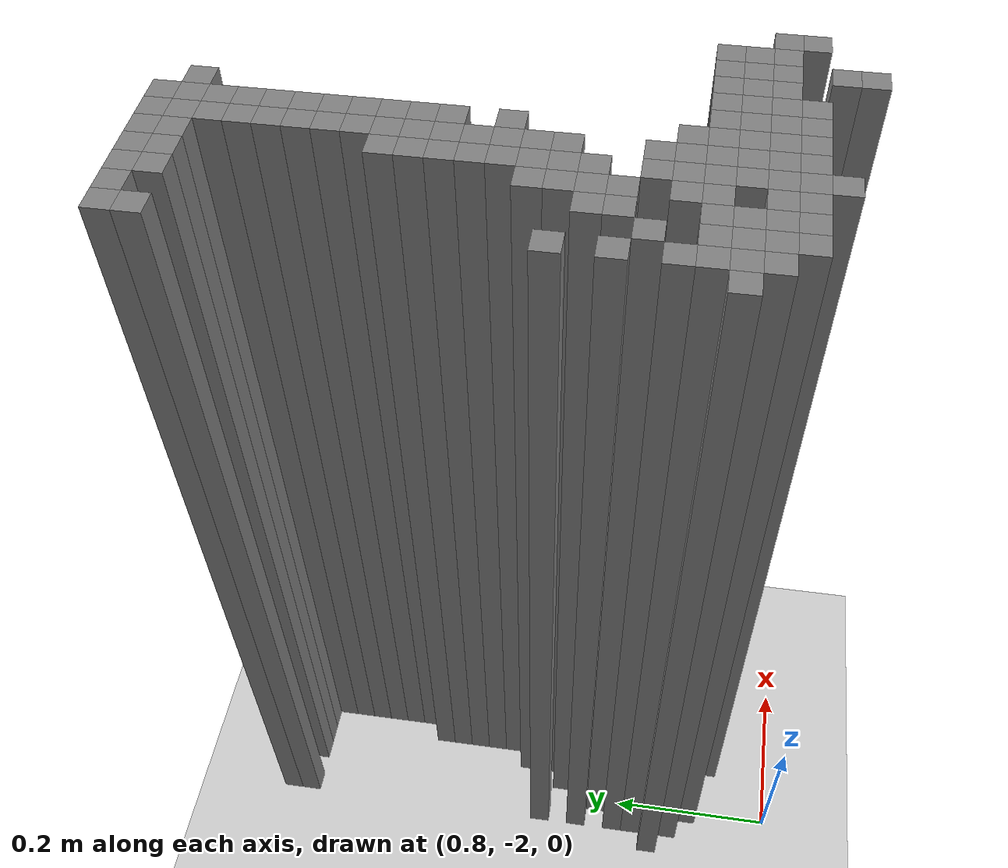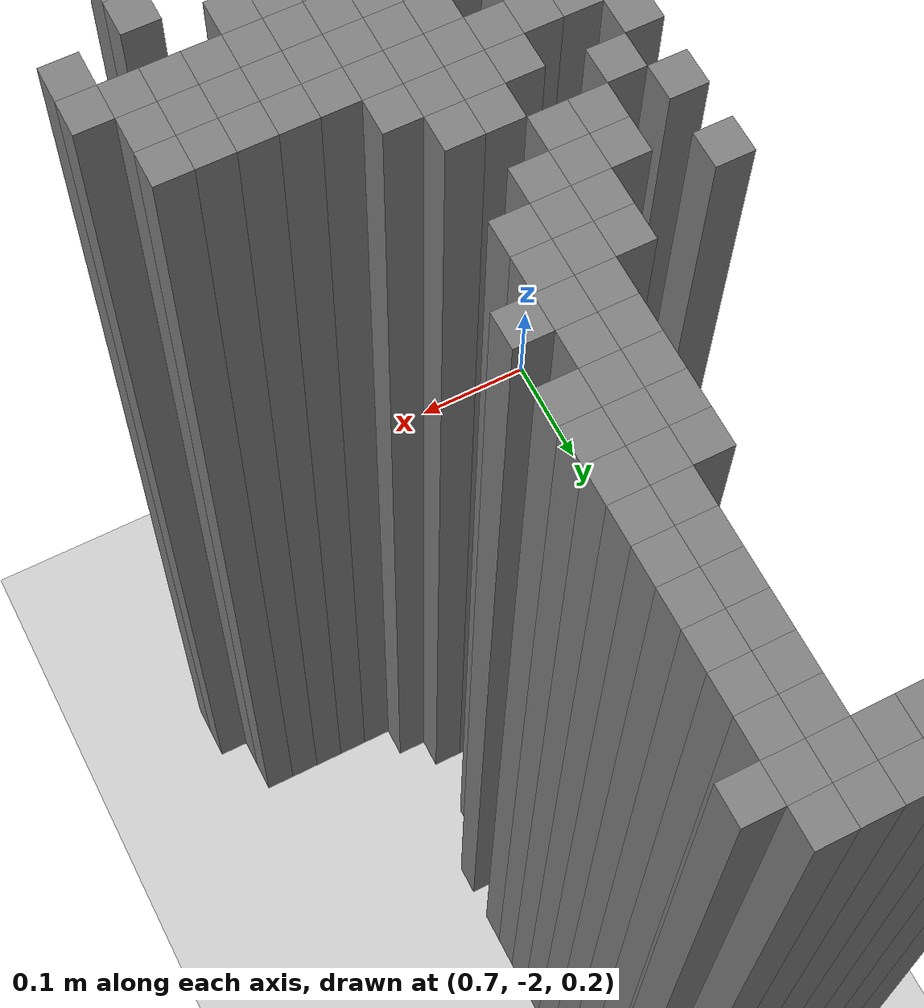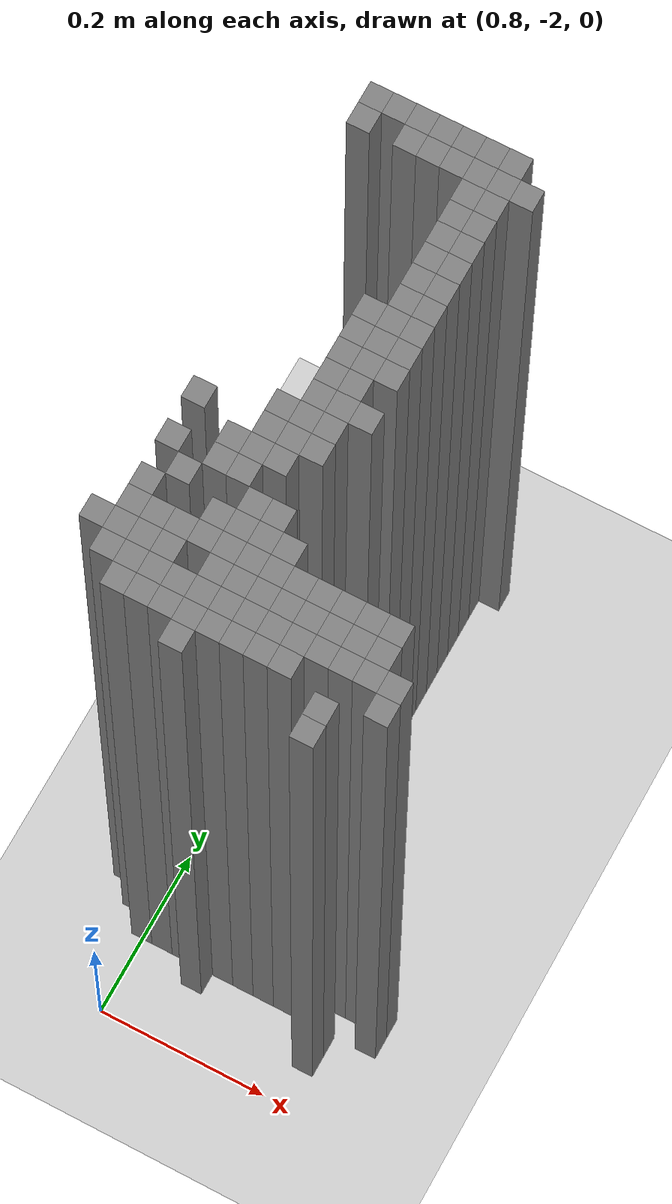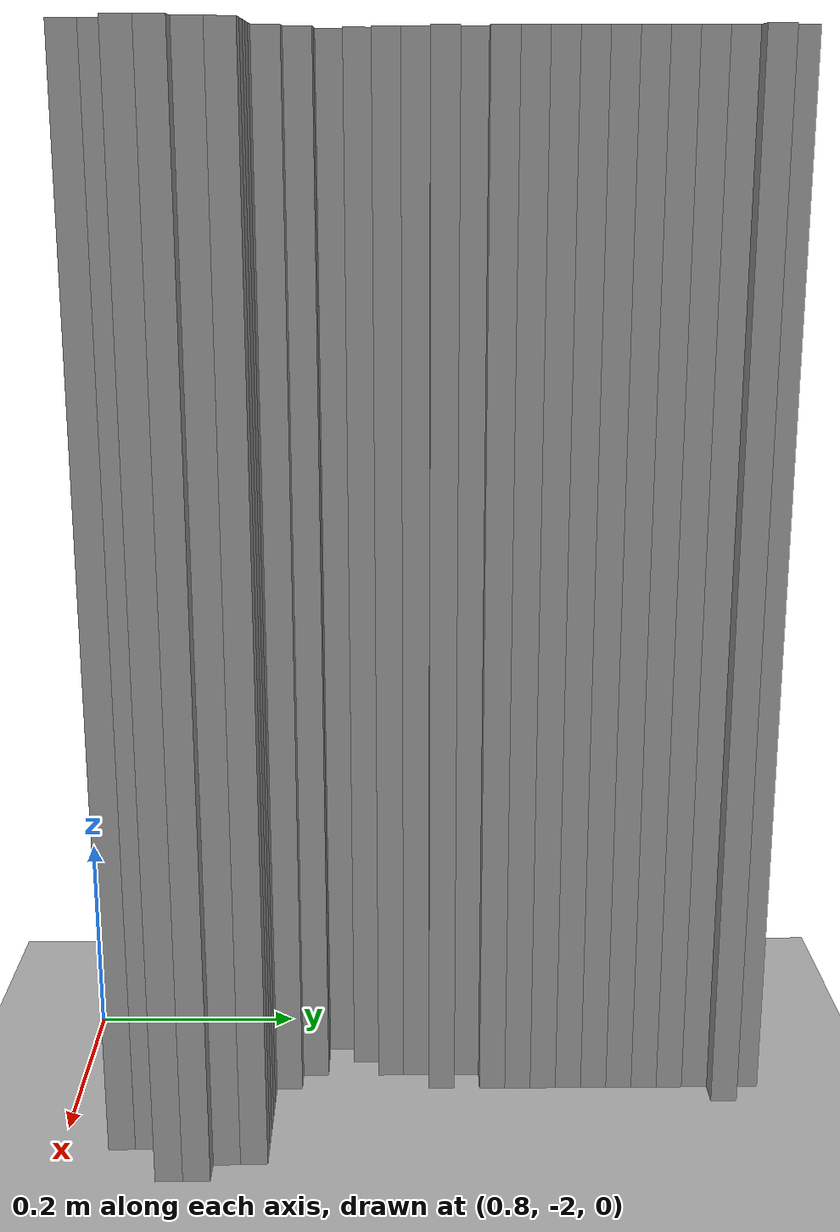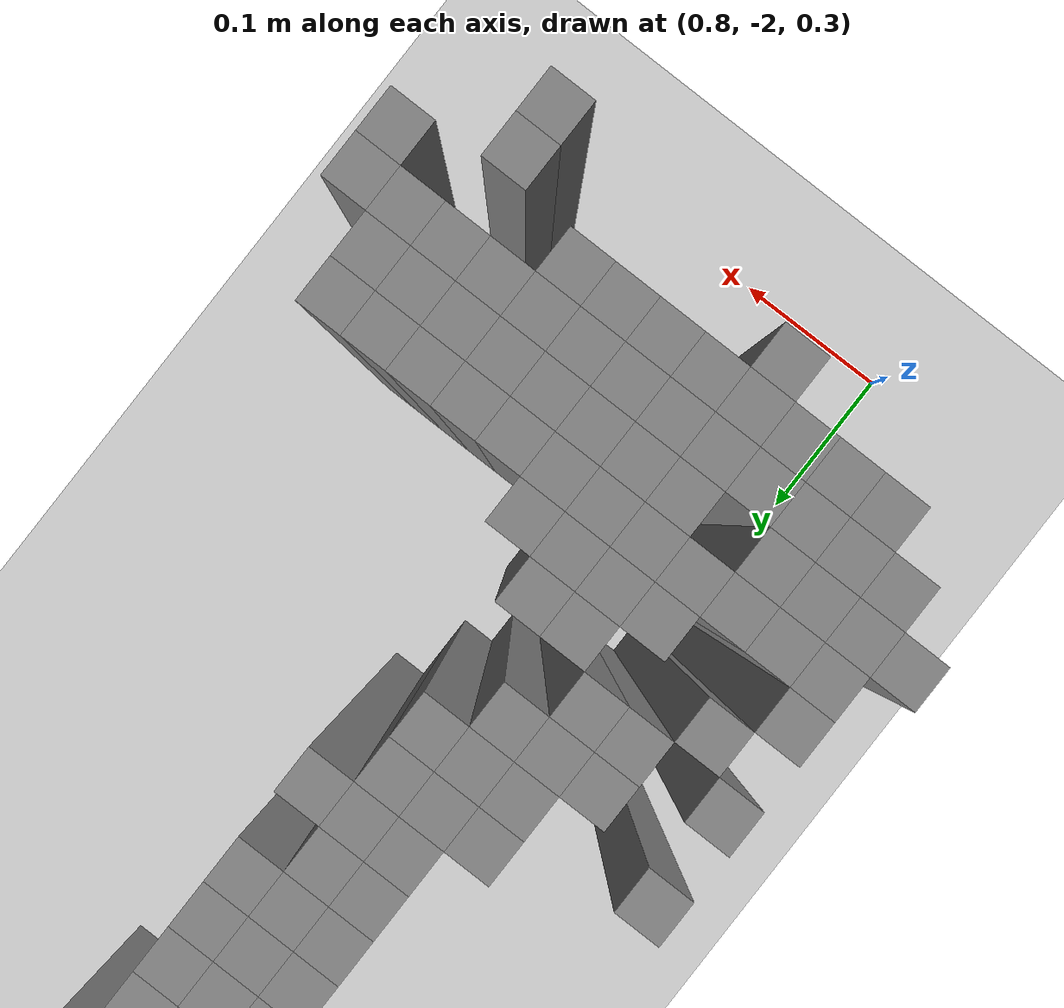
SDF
<sdf version="1.6">
 <world name="map_world">
  <include><uri>model://ground_plane</uri></include>
  <include><uri>model://sun</uri></include>
  <model name="obs_124_103">
   <static>true</static>
   <link name="link">
    <collision name="collision"><geometry><box><size>0.025 0.025 1.0</size></box></geometry></collision>
    <visual name="visual">
     <geometry><box><size>0.025 0.025 1.0</size></box></geometry>
     <material><ambient>0.5 0.5 0.5 1</ambient></material>
    </visual>
   </link>
   <pose>0.773765 -1.344071 0.5 0 0 0</pose>
  </model>
  <model name="obs_125_103">
   <static>true</static>
   <link name="link">
    <collision name="collision"><geometry><box><size>0.025 0.025 1.0</size></box></geometry></collision>
    <visual name="visual">
     <geometry><box><size>0.025 0.025 1.0</size></box></geometry>
     <material><ambient>0.5 0.5 0.5 1</ambient></material>
    </visual>
   </link>
   <pose>0.798765 -1.344071 0.5 0 0 0</pose>
  </model>
  <model name="obs_126_103">
   <static>true</static>
   <link name="link">
    <collision name="collision"><geometry><box><size>0.025 0.025 1.0</size></box></geometry></collision>
    <visual name="visual">
     <geometry><box><size>0.025 0.025 1.0</size></box></geometry>
     <material><ambient>0.5 0.5 0.5 1</ambient></material>
    </visual>
   </link>
   <pose>0.8237650000000003 -1.344071 0.5 0 0 0</pose>
  </model>
  <model name="obs_127_103">
   <static>true</static>
   <link name="link">
    <collision name="collision"><geometry><box><size>0.025 0.025 1.0</size></box></geometry></collision>
    <visual name="visual">
     <geometry><box><size>0.025 0.025 1.0</size></box></geometry>
     <material><ambient>0.5 0.5 0.5 1</ambient></material>
    </visual>
   </link>
   <pose>0.8487650000000002 -1.344071 0.5 0 0 0</pose>
  </model>
  <model name="obs_128_103">
   <static>true</static>
   <link name="link">
    <collision name="collision"><geometry><box><size>0.025 0.025 1.0</size></box></geometry></collision>
    <visual name="visual">
     <geometry><box><size>0.025 0.025 1.0</size></box></geometry>
     <material><ambient>0.5 0.5 0.5 1</ambient></material>
    </visual>
   </link>
   <pose>0.8737650000000001 -1.344071 0.5 0 0 0</pose>
  </model>
  <model name="obs_129_103">
   <static>true</static>
   <link name="link">
    <collision name="collision"><geometry><box><size>0.025 0.025 1.0</size></box></geometry></collision>
    <visual name="visual">
     <geometry><box><size>0.025 0.025 1.0</size></box></geometry>
     <material><ambient>0.5 0.5 0.5 1</ambient></material>
    </visual>
   </link>
   <pose>0.898765 -1.344071 0.5 0 0 0</pose>
  </model>
  <model name="obs_130_103">
   <static>true</static>
   <link name="link">
    <collision name="collision"><geometry><box><size>0.025 0.025 1.0</size></box></geometry></collision>
    <visual name="visual">
     <geometry><box><size>0.025 0.025 1.0</size></box></geometry>
     <material><ambient>0.5 0.5 0.5 1</ambient></material>
    </visual>
   </link>
   <pose>0.923765 -1.344071 0.5 0 0 0</pose>
  </model>
  <model name="obs_124_104">
   <static>true</static>
   <link name="link">
    <collision name="collision"><geometry><box><size>0.025 0.025 1.0</size></box></geometry></collision>
    <visual name="visual">
     <geometry><box><size>0.025 0.025 1.0</size></box></geometry>
     <material><ambient>0.5 0.5 0.5 1</ambient></material>
    </visual>
   </link>
   <pose>0.773765 -1.369071 0.5 0 0 0</pose>
  </model>
  <model name="obs_126_104">
   <static>true</static>
   <link name="link">
    <collision name="collision"><geometry><box><size>0.025 0.025 1.0</size></box></geometry></collision>
    <visual name="visual">
     <geometry><box><size>0.025 0.025 1.0</size></box></geometry>
     <material><ambient>0.5 0.5 0.5 1</ambient></material>
    </visual>
   </link>
   <pose>0.8237650000000003 -1.369071 0.5 0 0 0</pose>
  </model>
  <model name="obs_127_104">
   <static>true</static>
   <link name="link">
    <collision name="collision"><geometry><box><size>0.025 0.025 1.0</size></box></geometry></collision>
    <visual name="visual">
     <geometry><box><size>0.025 0.025 1.0</size></box></geometry>
     <material><ambient>0.5 0.5 0.5 1</ambient></material>
    </visual>
   </link>
   <pose>0.8487650000000002 -1.369071 0.5 0 0 0</pose>
  </model>
  <model name="obs_128_104">
   <static>true</static>
   <link name="link">
    <collision name="collision"><geometry><box><size>0.025 0.025 1.0</size></box></geometry></collision>
    <visual name="visual">
     <geometry><box><size>0.025 0.025 1.0</size></box></geometry>
     <material><ambient>0.5 0.5 0.5 1</ambient></material>
    </visual>
   </link>
   <pose>0.8737650000000001 -1.369071 0.5 0 0 0</pose>
  </model>
  <model name="obs_129_104">
   <static>true</static>
   <link name="link">
    <collision name="collision"><geometry><box><size>0.025 0.025 1.0</size></box></geometry></collision>
    <visual name="visual">
     <geometry><box><size>0.025 0.025 1.0</size></box></geometry>
     <material><ambient>0.5 0.5 0.5 1</ambient></material>
    </visual>
   </link>
   <pose>0.898765 -1.369071 0.5 0 0 0</pose>
  </model>
  <model name="obs_130_104">
   <static>true</static>
   <link name="link">
    <collision name="collision"><geometry><box><size>0.025 0.025 1.0</size></box></geometry></collision>
    <visual name="visual">
     <geometry><box><size>0.025 0.025 1.0</size></box></geometry>
     <material><ambient>0.5 0.5 0.5 1</ambient></material>
    </visual>
   </link>
   <pose>0.923765 -1.369071 0.5 0 0 0</pose>
  </model>
  <model name="obs_131_104">
   <static>true</static>
   <link name="link">
    <collision name="collision"><geometry><box><size>0.025 0.025 1.0</size></box></geometry></collision>
    <visual name="visual">
     <geometry><box><size>0.025 0.025 1.0</size></box></geometry>
     <material><ambient>0.5 0.5 0.5 1</ambient></material>
    </visual>
   </link>
   <pose>0.9487650000000003 -1.369071 0.5 0 0 0</pose>
  </model>
  <model name="obs_129_105">
   <static>true</static>
   <link name="link">
    <collision name="collision"><geometry><box><size>0.025 0.025 1.0</size></box></geometry></collision>
    <visual name="visual">
     <geometry><box><size>0.025 0.025 1.0</size></box></geometry>
     <material><ambient>0.5 0.5 0.5 1</ambient></material>
    </visual>
   </link>
   <pose>0.898765 -1.3940709999999998 0.5 0 0 0</pose>
  </model>
  <model name="obs_130_105">
   <static>true</static>
   <link name="link">
    <collision name="collision"><geometry><box><size>0.025 0.025 1.0</size></box></geometry></collision>
    <visual name="visual">
     <geometry><box><size>0.025 0.025 1.0</size></box></geometry>
     <material><ambient>0.5 0.5 0.5 1</ambient></material>
    </visual>
   </link>
   <pose>0.923765 -1.3940709999999998 0.5 0 0 0</pose>
  </model>
  <model name="obs_129_106">
   <static>true</static>
   <link name="link">
    <collision name="collision"><geometry><box><size>0.025 0.025 1.0</size></box></geometry></collision>
    <visual name="visual">
     <geometry><box><size>0.025 0.025 1.0</size></box></geometry>
     <material><ambient>0.5 0.5 0.5 1</ambient></material>
    </visual>
   </link>
   <pose>0.898765 -1.4190709999999997 0.5 0 0 0</pose>
  </model>
  <model name="obs_130_106">
   <static>true</static>
   <link name="link">
    <collision name="collision"><geometry><box><size>0.025 0.025 1.0</size></box></geometry></collision>
    <visual name="visual">
     <geometry><box><size>0.025 0.025 1.0</size></box></geometry>
     <material><ambient>0.5 0.5 0.5 1</ambient></material>
    </visual>
   </link>
   <pose>0.923765 -1.4190709999999997 0.5 0 0 0</pose>
  </model>
  <model name="obs_129_107">
   <static>true</static>
   <link name="link">
    <collision name="collision"><geometry><box><size>0.025 0.025 1.0</size></box></geometry></collision>
    <visual name="visual">
     <geometry><box><size>0.025 0.025 1.0</size></box></geometry>
     <material><ambient>0.5 0.5 0.5 1</ambient></material>
    </visual>
   </link>
   <pose>0.898765 -1.4440709999999999 0.5 0 0 0</pose>
  </model>
  <model name="obs_130_107">
   <static>true</static>
   <link name="link">
    <collision name="collision"><geometry><box><size>0.025 0.025 1.0</size></box></geometry></collision>
    <visual name="visual">
     <geometry><box><size>0.025 0.025 1.0</size></box></geometry>
     <material><ambient>0.5 0.5 0.5 1</ambient></material>
    </visual>
   </link>
   <pose>0.923765 -1.4440709999999999 0.5 0 0 0</pose>
  </model>
  <model name="obs_129_108">
   <static>true</static>
   <link name="link">
    <collision name="collision"><geometry><box><size>0.025 0.025 1.0</size></box></geometry></collision>
    <visual name="visual">
     <geometry><box><size>0.025 0.025 1.0</size></box></geometry>
     <material><ambient>0.5 0.5 0.5 1</ambient></material>
    </visual>
   </link>
   <pose>0.898765 -1.469071 0.5 0 0 0</pose>
  </model>
  <model name="obs_130_108">
   <static>true</static>
   <link name="link">
    <collision name="collision"><geometry><box><size>0.025 0.025 1.0</size></box></geometry></collision>
    <visual name="visual">
     <geometry><box><size>0.025 0.025 1.0</size></box></geometry>
     <material><ambient>0.5 0.5 0.5 1</ambient></material>
    </visual>
   </link>
   <pose>0.923765 -1.469071 0.5 0 0 0</pose>
  </model>
  <model name="obs_129_109">
   <static>true</static>
   <link name="link">
    <collision name="collision"><geometry><box><size>0.025 0.025 1.0</size></box></geometry></collision>
    <visual name="visual">
     <geometry><box><size>0.025 0.025 1.0</size></box></geometry>
     <material><ambient>0.5 0.5 0.5 1</ambient></material>
    </visual>
   </link>
   <pose>0.898765 -1.494071 0.5 0 0 0</pose>
  </model>
  <model name="obs_130_109">
   <static>true</static>
   <link name="link">
    <collision name="collision"><geometry><box><size>0.025 0.025 1.0</size></box></geometry></collision>
    <visual name="visual">
     <geometry><box><size>0.025 0.025 1.0</size></box></geometry>
     <material><ambient>0.5 0.5 0.5 1</ambient></material>
    </visual>
   </link>
   <pose>0.923765 -1.494071 0.5 0 0 0</pose>
  </model>
  <model name="obs_129_110">
   <static>true</static>
   <link name="link">
    <collision name="collision"><geometry><box><size>0.025 0.025 1.0</size></box></geometry></collision>
    <visual name="visual">
     <geometry><box><size>0.025 0.025 1.0</size></box></geometry>
     <material><ambient>0.5 0.5 0.5 1</ambient></material>
    </visual>
   </link>
   <pose>0.898765 -1.5190709999999998 0.5 0 0 0</pose>
  </model>
  <model name="obs_130_110">
   <static>true</static>
   <link name="link">
    <collision name="collision"><geometry><box><size>0.025 0.025 1.0</size></box></geometry></collision>
    <visual name="visual">
     <geometry><box><size>0.025 0.025 1.0</size></box></geometry>
     <material><ambient>0.5 0.5 0.5 1</ambient></material>
    </visual>
   </link>
   <pose>0.923765 -1.5190709999999998 0.5 0 0 0</pose>
  </model>
  <model name="obs_128_111">
   <static>true</static>
   <link name="link">
    <collision name="collision"><geometry><box><size>0.025 0.025 1.0</size></box></geometry></collision>
    <visual name="visual">
     <geometry><box><size>0.025 0.025 1.0</size></box></geometry>
     <material><ambient>0.5 0.5 0.5 1</ambient></material>
    </visual>
   </link>
   <pose>0.8737650000000001 -1.544071 0.5 0 0 0</pose>
  </model>
  <model name="obs_129_111">
   <static>true</static>
   <link name="link">
    <collision name="collision"><geometry><box><size>0.025 0.025 1.0</size></box></geometry></collision>
    <visual name="visual">
     <geometry><box><size>0.025 0.025 1.0</size></box></geometry>
     <material><ambient>0.5 0.5 0.5 1</ambient></material>
    </visual>
   </link>
   <pose>0.898765 -1.544071 0.5 0 0 0</pose>
  </model>
  <model name="obs_130_111">
   <static>true</static>
   <link name="link">
    <collision name="collision"><geometry><box><size>0.025 0.025 1.0</size></box></geometry></collision>
    <visual name="visual">
     <geometry><box><size>0.025 0.025 1.0</size></box></geometry>
     <material><ambient>0.5 0.5 0.5 1</ambient></material>
    </visual>
   </link>
   <pose>0.923765 -1.544071 0.5 0 0 0</pose>
  </model>
  <model name="obs_128_112">
   <static>true</static>
   <link name="link">
    <collision name="collision"><geometry><box><size>0.025 0.025 1.0</size></box></geometry></collision>
    <visual name="visual">
     <geometry><box><size>0.025 0.025 1.0</size></box></geometry>
     <material><ambient>0.5 0.5 0.5 1</ambient></material>
    </visual>
   </link>
   <pose>0.8737650000000001 -1.5690709999999999 0.5 0 0 0</pose>
  </model>
  <model name="obs_129_112">
   <static>true</static>
   <link name="link">
    <collision name="collision"><geometry><box><size>0.025 0.025 1.0</size></box></geometry></collision>
    <visual name="visual">
     <geometry><box><size>0.025 0.025 1.0</size></box></geometry>
     <material><ambient>0.5 0.5 0.5 1</ambient></material>
    </visual>
   </link>
   <pose>0.898765 -1.5690709999999999 0.5 0 0 0</pose>
  </model>
  <model name="obs_130_112">
   <static>true</static>
   <link name="link">
    <collision name="collision"><geometry><box><size>0.025 0.025 1.0</size></box></geometry></collision>
    <visual name="visual">
     <geometry><box><size>0.025 0.025 1.0</size></box></geometry>
     <material><ambient>0.5 0.5 0.5 1</ambient></material>
    </visual>
   </link>
   <pose>0.923765 -1.5690709999999999 0.5 0 0 0</pose>
  </model>
  <model name="obs_128_113">
   <static>true</static>
   <link name="link">
    <collision name="collision"><geometry><box><size>0.025 0.025 1.0</size></box></geometry></collision>
    <visual name="visual">
     <geometry><box><size>0.025 0.025 1.0</size></box></geometry>
     <material><ambient>0.5 0.5 0.5 1</ambient></material>
    </visual>
   </link>
   <pose>0.8737650000000001 -1.594071 0.5 0 0 0</pose>
  </model>
  <model name="obs_129_113">
   <static>true</static>
   <link name="link">
    <collision name="collision"><geometry><box><size>0.025 0.025 1.0</size></box></geometry></collision>
    <visual name="visual">
     <geometry><box><size>0.025 0.025 1.0</size></box></geometry>
     <material><ambient>0.5 0.5 0.5 1</ambient></material>
    </visual>
   </link>
   <pose>0.898765 -1.594071 0.5 0 0 0</pose>
  </model>
  <model name="obs_130_113">
   <static>true</static>
   <link name="link">
    <collision name="collision"><geometry><box><size>0.025 0.025 1.0</size></box></geometry></collision>
    <visual name="visual">
     <geometry><box><size>0.025 0.025 1.0</size></box></geometry>
     <material><ambient>0.5 0.5 0.5 1</ambient></material>
    </visual>
   </link>
   <pose>0.923765 -1.594071 0.5 0 0 0</pose>
  </model>
  <model name="obs_128_114">
   <static>true</static>
   <link name="link">
    <collision name="collision"><geometry><box><size>0.025 0.025 1.0</size></box></geometry></collision>
    <visual name="visual">
     <geometry><box><size>0.025 0.025 1.0</size></box></geometry>
     <material><ambient>0.5 0.5 0.5 1</ambient></material>
    </visual>
   </link>
   <pose>0.8737650000000001 -1.619071 0.5 0 0 0</pose>
  </model>
  <model name="obs_129_114">
   <static>true</static>
   <link name="link">
    <collision name="collision"><geometry><box><size>0.025 0.025 1.0</size></box></geometry></collision>
    <visual name="visual">
     <geometry><box><size>0.025 0.025 1.0</size></box></geometry>
     <material><ambient>0.5 0.5 0.5 1</ambient></material>
    </visual>
   </link>
   <pose>0.898765 -1.619071 0.5 0 0 0</pose>
  </model>
  <model name="obs_128_115">
   <static>true</static>
   <link name="link">
    <collision name="collision"><geometry><box><size>0.025 0.025 1.0</size></box></geometry></collision>
    <visual name="visual">
     <geometry><box><size>0.025 0.025 1.0</size></box></geometry>
     <material><ambient>0.5 0.5 0.5 1</ambient></material>
    </visual>
   </link>
   <pose>0.8737650000000001 -1.6440709999999998 0.5 0 0 0</pose>
  </model>
  <model name="obs_129_115">
   <static>true</static>
   <link name="link">
    <collision name="collision"><geometry><box><size>0.025 0.025 1.0</size></box></geometry></collision>
    <visual name="visual">
     <geometry><box><size>0.025 0.025 1.0</size></box></geometry>
     <material><ambient>0.5 0.5 0.5 1</ambient></material>
    </visual>
   </link>
   <pose>0.898765 -1.6440709999999998 0.5 0 0 0</pose>
  </model>
  <model name="obs_130_115">
   <static>true</static>
   <link name="link">
    <collision name="collision"><geometry><box><size>0.025 0.025 1.0</size></box></geometry></collision>
    <visual name="visual">
     <geometry><box><size>0.025 0.025 1.0</size></box></geometry>
     <material><ambient>0.5 0.5 0.5 1</ambient></material>
    </visual>
   </link>
   <pose>0.923765 -1.6440709999999998 0.5 0 0 0</pose>
  </model>
  <model name="obs_127_116">
   <static>true</static>
   <link name="link">
    <collision name="collision"><geometry><box><size>0.025 0.025 1.0</size></box></geometry></collision>
    <visual name="visual">
     <geometry><box><size>0.025 0.025 1.0</size></box></geometry>
     <material><ambient>0.5 0.5 0.5 1</ambient></material>
    </visual>
   </link>
   <pose>0.8487650000000002 -1.669071 0.5 0 0 0</pose>
  </model>
  <model name="obs_128_116">
   <static>true</static>
   <link name="link">
    <collision name="collision"><geometry><box><size>0.025 0.025 1.0</size></box></geometry></collision>
    <visual name="visual">
     <geometry><box><size>0.025 0.025 1.0</size></box></geometry>
     <material><ambient>0.5 0.5 0.5 1</ambient></material>
    </visual>
   </link>
   <pose>0.8737650000000001 -1.669071 0.5 0 0 0</pose>
  </model>
  <model name="obs_129_116">
   <static>true</static>
   <link name="link">
    <collision name="collision"><geometry><box><size>0.025 0.025 1.0</size></box></geometry></collision>
    <visual name="visual">
     <geometry><box><size>0.025 0.025 1.0</size></box></geometry>
     <material><ambient>0.5 0.5 0.5 1</ambient></material>
    </visual>
   </link>
   <pose>0.898765 -1.669071 0.5 0 0 0</pose>
  </model>
  <model name="obs_124_117">
   <static>true</static>
   <link name="link">
    <collision name="collision"><geometry><box><size>0.025 0.025 1.0</size></box></geometry></collision>
    <visual name="visual">
     <geometry><box><size>0.025 0.025 1.0</size></box></geometry>
     <material><ambient>0.5 0.5 0.5 1</ambient></material>
    </visual>
   </link>
   <pose>0.773765 -1.6940709999999999 0.5 0 0 0</pose>
  </model>
  <model name="obs_127_117">
   <static>true</static>
   <link name="link">
    <collision name="collision"><geometry><box><size>0.025 0.025 1.0</size></box></geometry></collision>
    <visual name="visual">
     <geometry><box><size>0.025 0.025 1.0</size></box></geometry>
     <material><ambient>0.5 0.5 0.5 1</ambient></material>
    </visual>
   </link>
   <pose>0.8487650000000002 -1.6940709999999999 0.5 0 0 0</pose>
  </model>
  <model name="obs_128_117">
   <static>true</static>
   <link name="link">
    <collision name="collision"><geometry><box><size>0.025 0.025 1.0</size></box></geometry></collision>
    <visual name="visual">
     <geometry><box><size>0.025 0.025 1.0</size></box></geometry>
     <material><ambient>0.5 0.5 0.5 1</ambient></material>
    </visual>
   </link>
   <pose>0.8737650000000001 -1.6940709999999999 0.5 0 0 0</pose>
  </model>
  <model name="obs_129_117">
   <static>true</static>
   <link name="link">
    <collision name="collision"><geometry><box><size>0.025 0.025 1.0</size></box></geometry></collision>
    <visual name="visual">
     <geometry><box><size>0.025 0.025 1.0</size></box></geometry>
     <material><ambient>0.5 0.5 0.5 1</ambient></material>
    </visual>
   </link>
   <pose>0.898765 -1.6940709999999999 0.5 0 0 0</pose>
  </model>
  <model name="obs_126_118">
   <static>true</static>
   <link name="link">
    <collision name="collision"><geometry><box><size>0.025 0.025 1.0</size></box></geometry></collision>
    <visual name="visual">
     <geometry><box><size>0.025 0.025 1.0</size></box></geometry>
     <material><ambient>0.5 0.5 0.5 1</ambient></material>
    </visual>
   </link>
   <pose>0.8237650000000003 -1.719071 0.5 0 0 0</pose>
  </model>
  <model name="obs_127_118">
   <static>true</static>
   <link name="link">
    <collision name="collision"><geometry><box><size>0.025 0.025 1.0</size></box></geometry></collision>
    <visual name="visual">
     <geometry><box><size>0.025 0.025 1.0</size></box></geometry>
     <material><ambient>0.5 0.5 0.5 1</ambient></material>
    </visual>
   </link>
   <pose>0.8487650000000002 -1.719071 0.5 0 0 0</pose>
  </model>
  <model name="obs_128_118">
   <static>true</static>
   <link name="link">
    <collision name="collision"><geometry><box><size>0.025 0.025 1.0</size></box></geometry></collision>
    <visual name="visual">
     <geometry><box><size>0.025 0.025 1.0</size></box></geometry>
     <material><ambient>0.5 0.5 0.5 1</ambient></material>
    </visual>
   </link>
   <pose>0.8737650000000001 -1.719071 0.5 0 0 0</pose>
  </model>
  <model name="obs_124_119">
   <static>true</static>
   <link name="link">
    <collision name="collision"><geometry><box><size>0.025 0.025 1.0</size></box></geometry></collision>
    <visual name="visual">
     <geometry><box><size>0.025 0.025 1.0</size></box></geometry>
     <material><ambient>0.5 0.5 0.5 1</ambient></material>
    </visual>
   </link>
   <pose>0.773765 -1.744071 0.5 0 0 0</pose>
  </model>
  <model name="obs_126_119">
   <static>true</static>
   <link name="link">
    <collision name="collision"><geometry><box><size>0.025 0.025 1.0</size></box></geometry></collision>
    <visual name="visual">
     <geometry><box><size>0.025 0.025 1.0</size></box></geometry>
     <material><ambient>0.5 0.5 0.5 1</ambient></material>
    </visual>
   </link>
   <pose>0.8237650000000003 -1.744071 0.5 0 0 0</pose>
  </model>
  <model name="obs_127_119">
   <static>true</static>
   <link name="link">
    <collision name="collision"><geometry><box><size>0.025 0.025 1.0</size></box></geometry></collision>
    <visual name="visual">
     <geometry><box><size>0.025 0.025 1.0</size></box></geometry>
     <material><ambient>0.5 0.5 0.5 1</ambient></material>
    </visual>
   </link>
   <pose>0.8487650000000002 -1.744071 0.5 0 0 0</pose>
  </model>
  <model name="obs_125_120">
   <static>true</static>
   <link name="link">
    <collision name="collision"><geometry><box><size>0.025 0.025 1.0</size></box></geometry></collision>
    <visual name="visual">
     <geometry><box><size>0.025 0.025 1.0</size></box></geometry>
     <material><ambient>0.5 0.5 0.5 1</ambient></material>
    </visual>
   </link>
   <pose>0.798765 -1.7690709999999998 0.5 0 0 0</pose>
  </model>
  <model name="obs_128_120">
   <static>true</static>
   <link name="link">
    <collision name="collision"><geometry><box><size>0.025 0.025 1.0</size></box></geometry></collision>
    <visual name="visual">
     <geometry><box><size>0.025 0.025 1.0</size></box></geometry>
     <material><ambient>0.5 0.5 0.5 1</ambient></material>
    </visual>
   </link>
   <pose>0.8737650000000001 -1.7690709999999998 0.5 0 0 0</pose>
  </model>
  <model name="obs_129_120">
   <static>true</static>
   <link name="link">
    <collision name="collision"><geometry><box><size>0.025 0.025 1.0</size></box></geometry></collision>
    <visual name="visual">
     <geometry><box><size>0.025 0.025 1.0</size></box></geometry>
     <material><ambient>0.5 0.5 0.5 1</ambient></material>
    </visual>
   </link>
   <pose>0.898765 -1.7690709999999998 0.5 0 0 0</pose>
  </model>
  <model name="obs_124_121">
   <static>true</static>
   <link name="link">
    <collision name="collision"><geometry><box><size>0.025 0.025 1.0</size></box></geometry></collision>
    <visual name="visual">
     <geometry><box><size>0.025 0.025 1.0</size></box></geometry>
     <material><ambient>0.5 0.5 0.5 1</ambient></material>
    </visual>
   </link>
   <pose>0.773765 -1.794071 0.5 0 0 0</pose>
  </model>
  <model name="obs_127_121">
   <static>true</static>
   <link name="link">
    <collision name="collision"><geometry><box><size>0.025 0.025 1.0</size></box></geometry></collision>
    <visual name="visual">
     <geometry><box><size>0.025 0.025 1.0</size></box></geometry>
     <material><ambient>0.5 0.5 0.5 1</ambient></material>
    </visual>
   </link>
   <pose>0.8487650000000002 -1.794071 0.5 0 0 0</pose>
  </model>
  <model name="obs_128_121">
   <static>true</static>
   <link name="link">
    <collision name="collision"><geometry><box><size>0.025 0.025 1.0</size></box></geometry></collision>
    <visual name="visual">
     <geometry><box><size>0.025 0.025 1.0</size></box></geometry>
     <material><ambient>0.5 0.5 0.5 1</ambient></material>
    </visual>
   </link>
   <pose>0.8737650000000001 -1.794071 0.5 0 0 0</pose>
  </model>
  <model name="obs_129_121">
   <static>true</static>
   <link name="link">
    <collision name="collision"><geometry><box><size>0.025 0.025 1.0</size></box></geometry></collision>
    <visual name="visual">
     <geometry><box><size>0.025 0.025 1.0</size></box></geometry>
     <material><ambient>0.5 0.5 0.5 1</ambient></material>
    </visual>
   </link>
   <pose>0.898765 -1.794071 0.5 0 0 0</pose>
  </model>
  <model name="obs_130_121">
   <static>true</static>
   <link name="link">
    <collision name="collision"><geometry><box><size>0.025 0.025 1.0</size></box></geometry></collision>
    <visual name="visual">
     <geometry><box><size>0.025 0.025 1.0</size></box></geometry>
     <material><ambient>0.5 0.5 0.5 1</ambient></material>
    </visual>
   </link>
   <pose>0.923765 -1.794071 0.5 0 0 0</pose>
  </model>
  <model name="obs_124_122">
   <static>true</static>
   <link name="link">
    <collision name="collision"><geometry><box><size>0.025 0.025 1.0</size></box></geometry></collision>
    <visual name="visual">
     <geometry><box><size>0.025 0.025 1.0</size></box></geometry>
     <material><ambient>0.5 0.5 0.5 1</ambient></material>
    </visual>
   </link>
   <pose>0.773765 -1.8190709999999999 0.5 0 0 0</pose>
  </model>
  <model name="obs_125_122">
   <static>true</static>
   <link name="link">
    <collision name="collision"><geometry><box><size>0.025 0.025 1.0</size></box></geometry></collision>
    <visual name="visual">
     <geometry><box><size>0.025 0.025 1.0</size></box></geometry>
     <material><ambient>0.5 0.5 0.5 1</ambient></material>
    </visual>
   </link>
   <pose>0.798765 -1.8190709999999999 0.5 0 0 0</pose>
  </model>
  <model name="obs_126_122">
   <static>true</static>
   <link name="link">
    <collision name="collision"><geometry><box><size>0.025 0.025 1.0</size></box></geometry></collision>
    <visual name="visual">
     <geometry><box><size>0.025 0.025 1.0</size></box></geometry>
     <material><ambient>0.5 0.5 0.5 1</ambient></material>
    </visual>
   </link>
   <pose>0.8237650000000003 -1.8190709999999999 0.5 0 0 0</pose>
  </model>
  <model name="obs_127_122">
   <static>true</static>
   <link name="link">
    <collision name="collision"><geometry><box><size>0.025 0.025 1.0</size></box></geometry></collision>
    <visual name="visual">
     <geometry><box><size>0.025 0.025 1.0</size></box></geometry>
     <material><ambient>0.5 0.5 0.5 1</ambient></material>
    </visual>
   </link>
   <pose>0.8487650000000002 -1.8190709999999999 0.5 0 0 0</pose>
  </model>
  <model name="obs_128_122">
   <static>true</static>
   <link name="link">
    <collision name="collision"><geometry><box><size>0.025 0.025 1.0</size></box></geometry></collision>
    <visual name="visual">
     <geometry><box><size>0.025 0.025 1.0</size></box></geometry>
     <material><ambient>0.5 0.5 0.5 1</ambient></material>
    </visual>
   </link>
   <pose>0.8737650000000001 -1.8190709999999999 0.5 0 0 0</pose>
  </model>
  <model name="obs_129_122">
   <static>true</static>
   <link name="link">
    <collision name="collision"><geometry><box><size>0.025 0.025 1.0</size></box></geometry></collision>
    <visual name="visual">
     <geometry><box><size>0.025 0.025 1.0</size></box></geometry>
     <material><ambient>0.5 0.5 0.5 1</ambient></material>
    </visual>
   </link>
   <pose>0.898765 -1.8190709999999999 0.5 0 0 0</pose>
  </model>
  <model name="obs_130_122">
   <static>true</static>
   <link name="link">
    <collision name="collision"><geometry><box><size>0.025 0.025 1.0</size></box></geometry></collision>
    <visual name="visual">
     <geometry><box><size>0.025 0.025 1.0</size></box></geometry>
     <material><ambient>0.5 0.5 0.5 1</ambient></material>
    </visual>
   </link>
   <pose>0.923765 -1.8190709999999999 0.5 0 0 0</pose>
  </model>
  <model name="obs_131_122">
   <static>true</static>
   <link name="link">
    <collision name="collision"><geometry><box><size>0.025 0.025 1.0</size></box></geometry></collision>
    <visual name="visual">
     <geometry><box><size>0.025 0.025 1.0</size></box></geometry>
     <material><ambient>0.5 0.5 0.5 1</ambient></material>
    </visual>
   </link>
   <pose>0.9487650000000003 -1.8190709999999999 0.5 0 0 0</pose>
  </model>
  <model name="obs_132_122">
   <static>true</static>
   <link name="link">
    <collision name="collision"><geometry><box><size>0.025 0.025 1.0</size></box></geometry></collision>
    <visual name="visual">
     <geometry><box><size>0.025 0.025 1.0</size></box></geometry>
     <material><ambient>0.5 0.5 0.5 1</ambient></material>
    </visual>
   </link>
   <pose>0.9737650000000002 -1.8190709999999999 0.5 0 0 0</pose>
  </model>
  <model name="obs_133_122">
   <static>true</static>
   <link name="link">
    <collision name="collision"><geometry><box><size>0.025 0.025 1.0</size></box></geometry></collision>
    <visual name="visual">
     <geometry><box><size>0.025 0.025 1.0</size></box></geometry>
     <material><ambient>0.5 0.5 0.5 1</ambient></material>
    </visual>
   </link>
   <pose>0.9987650000000001 -1.8190709999999999 0.5 0 0 0</pose>
  </model>
  <model name="obs_134_122">
   <static>true</static>
   <link name="link">
    <collision name="collision"><geometry><box><size>0.025 0.025 1.0</size></box></geometry></collision>
    <visual name="visual">
     <geometry><box><size>0.025 0.025 1.0</size></box></geometry>
     <material><ambient>0.5 0.5 0.5 1</ambient></material>
    </visual>
   </link>
   <pose>1.023765 -1.8190709999999999 0.5 0 0 0</pose>
  </model>
  <model name="obs_135_122">
   <static>true</static>
   <link name="link">
    <collision name="collision"><geometry><box><size>0.025 0.025 1.0</size></box></geometry></collision>
    <visual name="visual">
     <geometry><box><size>0.025 0.025 1.0</size></box></geometry>
     <material><ambient>0.5 0.5 0.5 1</ambient></material>
    </visual>
   </link>
   <pose>1.048765 -1.8190709999999999 0.5 0 0 0</pose>
  </model>
  <model name="obs_123_123">
   <static>true</static>
   <link name="link">
    <collision name="collision"><geometry><box><size>0.025 0.025 1.0</size></box></geometry></collision>
    <visual name="visual">
     <geometry><box><size>0.025 0.025 1.0</size></box></geometry>
     <material><ambient>0.5 0.5 0.5 1</ambient></material>
    </visual>
   </link>
   <pose>0.7487650000000001 -1.844071 0.5 0 0 0</pose>
  </model>
  <model name="obs_124_123">
   <static>true</static>
   <link name="link">
    <collision name="collision"><geometry><box><size>0.025 0.025 1.0</size></box></geometry></collision>
    <visual name="visual">
     <geometry><box><size>0.025 0.025 1.0</size></box></geometry>
     <material><ambient>0.5 0.5 0.5 1</ambient></material>
    </visual>
   </link>
   <pose>0.773765 -1.844071 0.5 0 0 0</pose>
  </model>
  <model name="obs_125_123">
   <static>true</static>
   <link name="link">
    <collision name="collision"><geometry><box><size>0.025 0.025 1.0</size></box></geometry></collision>
    <visual name="visual">
     <geometry><box><size>0.025 0.025 1.0</size></box></geometry>
     <material><ambient>0.5 0.5 0.5 1</ambient></material>
    </visual>
   </link>
   <pose>0.798765 -1.844071 0.5 0 0 0</pose>
  </model>
  <model name="obs_126_123">
   <static>true</static>
   <link name="link">
    <collision name="collision"><geometry><box><size>0.025 0.025 1.0</size></box></geometry></collision>
    <visual name="visual">
     <geometry><box><size>0.025 0.025 1.0</size></box></geometry>
     <material><ambient>0.5 0.5 0.5 1</ambient></material>
    </visual>
   </link>
   <pose>0.8237650000000003 -1.844071 0.5 0 0 0</pose>
  </model>
  <model name="obs_128_123">
   <static>true</static>
   <link name="link">
    <collision name="collision"><geometry><box><size>0.025 0.025 1.0</size></box></geometry></collision>
    <visual name="visual">
     <geometry><box><size>0.025 0.025 1.0</size></box></geometry>
     <material><ambient>0.5 0.5 0.5 1</ambient></material>
    </visual>
   </link>
   <pose>0.8737650000000001 -1.844071 0.5 0 0 0</pose>
  </model>
  <model name="obs_129_123">
   <static>true</static>
   <link name="link">
    <collision name="collision"><geometry><box><size>0.025 0.025 1.0</size></box></geometry></collision>
    <visual name="visual">
     <geometry><box><size>0.025 0.025 1.0</size></box></geometry>
     <material><ambient>0.5 0.5 0.5 1</ambient></material>
    </visual>
   </link>
   <pose>0.898765 -1.844071 0.5 0 0 0</pose>
  </model>
  <model name="obs_130_123">
   <static>true</static>
   <link name="link">
    <collision name="collision"><geometry><box><size>0.025 0.025 1.0</size></box></geometry></collision>
    <visual name="visual">
     <geometry><box><size>0.025 0.025 1.0</size></box></geometry>
     <material><ambient>0.5 0.5 0.5 1</ambient></material>
    </visual>
   </link>
   <pose>0.923765 -1.844071 0.5 0 0 0</pose>
  </model>
  <model name="obs_131_123">
   <static>true</static>
   <link name="link">
    <collision name="collision"><geometry><box><size>0.025 0.025 1.0</size></box></geometry></collision>
    <visual name="visual">
     <geometry><box><size>0.025 0.025 1.0</size></box></geometry>
     <material><ambient>0.5 0.5 0.5 1</ambient></material>
    </visual>
   </link>
   <pose>0.9487650000000003 -1.844071 0.5 0 0 0</pose>
  </model>
  <model name="obs_132_123">
   <static>true</static>
   <link name="link">
    <collision name="collision"><geometry><box><size>0.025 0.025 1.0</size></box></geometry></collision>
    <visual name="visual">
     <geometry><box><size>0.025 0.025 1.0</size></box></geometry>
     <material><ambient>0.5 0.5 0.5 1</ambient></material>
    </visual>
   </link>
   <pose>0.9737650000000002 -1.844071 0.5 0 0 0</pose>
  </model>
  <model name="obs_133_123">
   <static>true</static>
   <link name="link">
    <collision name="collision"><geometry><box><size>0.025 0.025 1.0</size></box></geometry></collision>
    <visual name="visual">
     <geometry><box><size>0.025 0.025 1.0</size></box></geometry>
     <material><ambient>0.5 0.5 0.5 1</ambient></material>
    </visual>
   </link>
   <pose>0.9987650000000001 -1.844071 0.5 0 0 0</pose>
  </model>
  <model name="obs_134_123">
   <static>true</static>
   <link name="link">
    <collision name="collision"><geometry><box><size>0.025 0.025 1.0</size></box></geometry></collision>
    <visual name="visual">
     <geometry><box><size>0.025 0.025 1.0</size></box></geometry>
     <material><ambient>0.5 0.5 0.5 1</ambient></material>
    </visual>
   </link>
   <pose>1.023765 -1.844071 0.5 0 0 0</pose>
  </model>
  <model name="obs_135_123">
   <static>true</static>
   <link name="link">
    <collision name="collision"><geometry><box><size>0.025 0.025 1.0</size></box></geometry></collision>
    <visual name="visual">
     <geometry><box><size>0.025 0.025 1.0</size></box></geometry>
     <material><ambient>0.5 0.5 0.5 1</ambient></material>
    </visual>
   </link>
   <pose>1.048765 -1.844071 0.5 0 0 0</pose>
  </model>
  <model name="obs_124_124">
   <static>true</static>
   <link name="link">
    <collision name="collision"><geometry><box><size>0.025 0.025 1.0</size></box></geometry></collision>
    <visual name="visual">
     <geometry><box><size>0.025 0.025 1.0</size></box></geometry>
     <material><ambient>0.5 0.5 0.5 1</ambient></material>
    </visual>
   </link>
   <pose>0.773765 -1.869071 0.5 0 0 0</pose>
  </model>
  <model name="obs_125_124">
   <static>true</static>
   <link name="link">
    <collision name="collision"><geometry><box><size>0.025 0.025 1.0</size></box></geometry></collision>
    <visual name="visual">
     <geometry><box><size>0.025 0.025 1.0</size></box></geometry>
     <material><ambient>0.5 0.5 0.5 1</ambient></material>
    </visual>
   </link>
   <pose>0.798765 -1.869071 0.5 0 0 0</pose>
  </model>
  <model name="obs_126_124">
   <static>true</static>
   <link name="link">
    <collision name="collision"><geometry><box><size>0.025 0.025 1.0</size></box></geometry></collision>
    <visual name="visual">
     <geometry><box><size>0.025 0.025 1.0</size></box></geometry>
     <material><ambient>0.5 0.5 0.5 1</ambient></material>
    </visual>
   </link>
   <pose>0.8237650000000003 -1.869071 0.5 0 0 0</pose>
  </model>
  <model name="obs_127_124">
   <static>true</static>
   <link name="link">
    <collision name="collision"><geometry><box><size>0.025 0.025 1.0</size></box></geometry></collision>
    <visual name="visual">
     <geometry><box><size>0.025 0.025 1.0</size></box></geometry>
     <material><ambient>0.5 0.5 0.5 1</ambient></material>
    </visual>
   </link>
   <pose>0.8487650000000002 -1.869071 0.5 0 0 0</pose>
  </model>
  <model name="obs_128_124">
   <static>true</static>
   <link name="link">
    <collision name="collision"><geometry><box><size>0.025 0.025 1.0</size></box></geometry></collision>
    <visual name="visual">
     <geometry><box><size>0.025 0.025 1.0</size></box></geometry>
     <material><ambient>0.5 0.5 0.5 1</ambient></material>
    </visual>
   </link>
   <pose>0.8737650000000001 -1.869071 0.5 0 0 0</pose>
  </model>
  <model name="obs_129_124">
   <static>true</static>
   <link name="link">
    <collision name="collision"><geometry><box><size>0.025 0.025 1.0</size></box></geometry></collision>
    <visual name="visual">
     <geometry><box><size>0.025 0.025 1.0</size></box></geometry>
     <material><ambient>0.5 0.5 0.5 1</ambient></material>
    </visual>
   </link>
   <pose>0.898765 -1.869071 0.5 0 0 0</pose>
  </model>
  <model name="obs_130_124">
   <static>true</static>
   <link name="link">
    <collision name="collision"><geometry><box><size>0.025 0.025 1.0</size></box></geometry></collision>
    <visual name="visual">
     <geometry><box><size>0.025 0.025 1.0</size></box></geometry>
     <material><ambient>0.5 0.5 0.5 1</ambient></material>
    </visual>
   </link>
   <pose>0.923765 -1.869071 0.5 0 0 0</pose>
  </model>
  <model name="obs_131_124">
   <static>true</static>
   <link name="link">
    <collision name="collision"><geometry><box><size>0.025 0.025 1.0</size></box></geometry></collision>
    <visual name="visual">
     <geometry><box><size>0.025 0.025 1.0</size></box></geometry>
     <material><ambient>0.5 0.5 0.5 1</ambient></material>
    </visual>
   </link>
   <pose>0.9487650000000003 -1.869071 0.5 0 0 0</pose>
  </model>
  <model name="obs_132_124">
   <static>true</static>
   <link name="link">
    <collision name="collision"><geometry><box><size>0.025 0.025 1.0</size></box></geometry></collision>
    <visual name="visual">
     <geometry><box><size>0.025 0.025 1.0</size></box></geometry>
     <material><ambient>0.5 0.5 0.5 1</ambient></material>
    </visual>
   </link>
   <pose>0.9737650000000002 -1.869071 0.5 0 0 0</pose>
  </model>
  <model name="obs_133_124">
   <static>true</static>
   <link name="link">
    <collision name="collision"><geometry><box><size>0.025 0.025 1.0</size></box></geometry></collision>
    <visual name="visual">
     <geometry><box><size>0.025 0.025 1.0</size></box></geometry>
     <material><ambient>0.5 0.5 0.5 1</ambient></material>
    </visual>
   </link>
   <pose>0.9987650000000001 -1.869071 0.5 0 0 0</pose>
  </model>
  <model name="obs_134_124">
   <static>true</static>
   <link name="link">
    <collision name="collision"><geometry><box><size>0.025 0.025 1.0</size></box></geometry></collision>
    <visual name="visual">
     <geometry><box><size>0.025 0.025 1.0</size></box></geometry>
     <material><ambient>0.5 0.5 0.5 1</ambient></material>
    </visual>
   </link>
   <pose>1.023765 -1.869071 0.5 0 0 0</pose>
  </model>
  <model name="obs_135_124">
   <static>true</static>
   <link name="link">
    <collision name="collision"><geometry><box><size>0.025 0.025 1.0</size></box></geometry></collision>
    <visual name="visual">
     <geometry><box><size>0.025 0.025 1.0</size></box></geometry>
     <material><ambient>0.5 0.5 0.5 1</ambient></material>
    </visual>
   </link>
   <pose>1.048765 -1.869071 0.5 0 0 0</pose>
  </model>
  <model name="obs_136_124">
   <static>true</static>
   <link name="link">
    <collision name="collision"><geometry><box><size>0.025 0.025 1.0</size></box></geometry></collision>
    <visual name="visual">
     <geometry><box><size>0.025 0.025 1.0</size></box></geometry>
     <material><ambient>0.5 0.5 0.5 1</ambient></material>
    </visual>
   </link>
   <pose>1.0737650000000003 -1.869071 0.5 0 0 0</pose>
  </model>
  <model name="obs_125_125">
   <static>true</static>
   <link name="link">
    <collision name="collision"><geometry><box><size>0.025 0.025 1.0</size></box></geometry></collision>
    <visual name="visual">
     <geometry><box><size>0.025 0.025 1.0</size></box></geometry>
     <material><ambient>0.5 0.5 0.5 1</ambient></material>
    </visual>
   </link>
   <pose>0.798765 -1.8940709999999998 0.5 0 0 0</pose>
  </model>
  <model name="obs_126_125">
   <static>true</static>
   <link name="link">
    <collision name="collision"><geometry><box><size>0.025 0.025 1.0</size></box></geometry></collision>
    <visual name="visual">
     <geometry><box><size>0.025 0.025 1.0</size></box></geometry>
     <material><ambient>0.5 0.5 0.5 1</ambient></material>
    </visual>
   </link>
   <pose>0.8237650000000003 -1.8940709999999998 0.5 0 0 0</pose>
  </model>
  <model name="obs_127_125">
   <static>true</static>
   <link name="link">
    <collision name="collision"><geometry><box><size>0.025 0.025 1.0</size></box></geometry></collision>
    <visual name="visual">
     <geometry><box><size>0.025 0.025 1.0</size></box></geometry>
     <material><ambient>0.5 0.5 0.5 1</ambient></material>
    </visual>
   </link>
   <pose>0.8487650000000002 -1.8940709999999998 0.5 0 0 0</pose>
  </model>
  <model name="obs_128_125">
   <static>true</static>
   <link name="link">
    <collision name="collision"><geometry><box><size>0.025 0.025 1.0</size></box></geometry></collision>
    <visual name="visual">
     <geometry><box><size>0.025 0.025 1.0</size></box></geometry>
     <material><ambient>0.5 0.5 0.5 1</ambient></material>
    </visual>
   </link>
   <pose>0.8737650000000001 -1.8940709999999998 0.5 0 0 0</pose>
  </model>
  <model name="obs_129_125">
   <static>true</static>
   <link name="link">
    <collision name="collision"><geometry><box><size>0.025 0.025 1.0</size></box></geometry></collision>
    <visual name="visual">
     <geometry><box><size>0.025 0.025 1.0</size></box></geometry>
     <material><ambient>0.5 0.5 0.5 1</ambient></material>
    </visual>
   </link>
   <pose>0.898765 -1.8940709999999998 0.5 0 0 0</pose>
  </model>
  <model name="obs_130_125">
   <static>true</static>
   <link name="link">
    <collision name="collision"><geometry><box><size>0.025 0.025 1.0</size></box></geometry></collision>
    <visual name="visual">
     <geometry><box><size>0.025 0.025 1.0</size></box></geometry>
     <material><ambient>0.5 0.5 0.5 1</ambient></material>
    </visual>
   </link>
   <pose>0.923765 -1.8940709999999998 0.5 0 0 0</pose>
  </model>
  <model name="obs_131_125">
   <static>true</static>
   <link name="link">
    <collision name="collision"><geometry><box><size>0.025 0.025 1.0</size></box></geometry></collision>
    <visual name="visual">
     <geometry><box><size>0.025 0.025 1.0</size></box></geometry>
     <material><ambient>0.5 0.5 0.5 1</ambient></material>
    </visual>
   </link>
   <pose>0.9487650000000003 -1.8940709999999998 0.5 0 0 0</pose>
  </model>
  <model name="obs_132_125">
   <static>true</static>
   <link name="link">
    <collision name="collision"><geometry><box><size>0.025 0.025 1.0</size></box></geometry></collision>
    <visual name="visual">
     <geometry><box><size>0.025 0.025 1.0</size></box></geometry>
     <material><ambient>0.5 0.5 0.5 1</ambient></material>
    </visual>
   </link>
   <pose>0.9737650000000002 -1.8940709999999998 0.5 0 0 0</pose>
  </model>
  <model name="obs_136_125">
   <static>true</static>
   <link name="link">
    <collision name="collision"><geometry><box><size>0.025 0.025 1.0</size></box></geometry></collision>
    <visual name="visual">
     <geometry><box><size>0.025 0.025 1.0</size></box></geometry>
     <material><ambient>0.5 0.5 0.5 1</ambient></material>
    </visual>
   </link>
   <pose>1.0737650000000003 -1.8940709999999998 0.5 0 0 0</pose>
  </model>
  <model name="obs_128_126">
   <static>true</static>
   <link name="link">
    <collision name="collision"><geometry><box><size>0.025 0.025 1.0</size></box></geometry></collision>
    <visual name="visual">
     <geometry><box><size>0.025 0.025 1.0</size></box></geometry>
     <material><ambient>0.5 0.5 0.5 1</ambient></material>
    </visual>
   </link>
   <pose>0.8737650000000001 -1.919071 0.5 0 0 0</pose>
  </model>
  <model name="obs_134_126">
   <static>true</static>
   <link name="link">
    <collision name="collision"><geometry><box><size>0.025 0.025 1.0</size></box></geometry></collision>
    <visual name="visual">
     <geometry><box><size>0.025 0.025 1.0</size></box></geometry>
     <material><ambient>0.5 0.5 0.5 1</ambient></material>
    </visual>
   </link>
   <pose>1.023765 -1.919071 0.5 0 0 0</pose>
  </model>
  <model name="obs_134_127">
   <static>true</static>
   <link name="link">
    <collision name="collision"><geometry><box><size>0.025 0.025 1.0</size></box></geometry></collision>
    <visual name="visual">
     <geometry><box><size>0.025 0.025 1.0</size></box></geometry>
     <material><ambient>0.5 0.5 0.5 1</ambient></material>
    </visual>
   </link>
   <pose>1.023765 -1.9440709999999999 0.5 0 0 0</pose>
  </model>
 </world>
</sdf>
